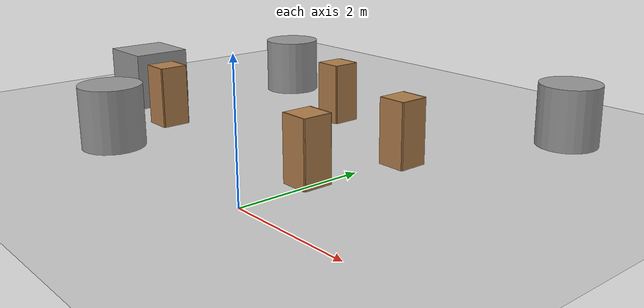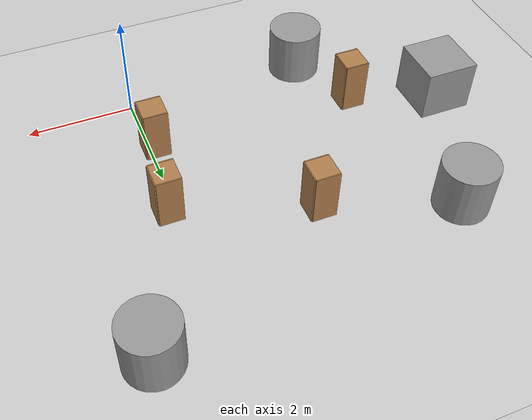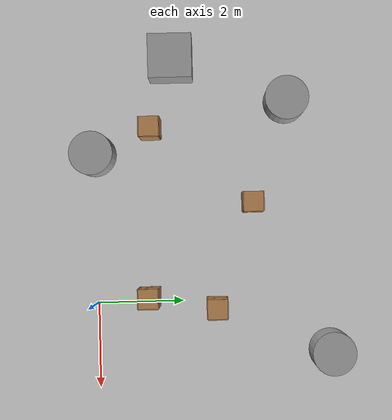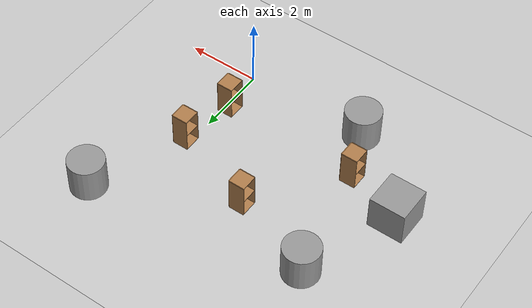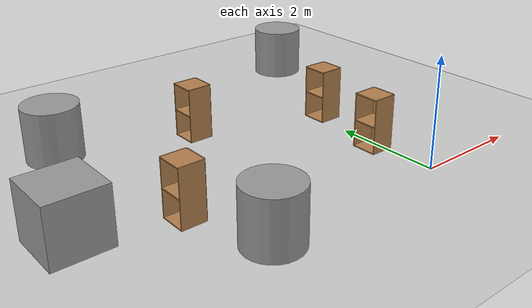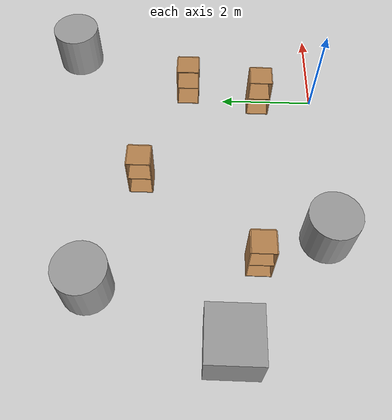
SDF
<sdf version="1.7">
 <world name="default">
  <light name="sun" type="directional">
   <pose>0 0 10 0 -0 0</pose>
   <diffuse>0.8 0.8 0.8 1</diffuse>
   <specular>0.2 0.2 0.2 1</specular>
   <attenuation>
    <range>1000</range>
    <constant>0.9</constant>
    <linear>0.01</linear>
    <quadratic>0.001</quadratic>
   </attenuation>
   <direction>-0.5 0.1 -0.9</direction>
   <spot><inner_angle>0</inner_angle><outer_angle>0</outer_angle><falloff>0</falloff></spot>
  </light>
  <model name="ground_plane">
   <static>1</static>
   <link name="link">
    <collision name="collision">
     <geometry><plane><normal>0 0 1</normal><size>100 100</size></plane></geometry>
     <surface><friction><ode><mu>100</mu><mu2>50</mu2></ode></friction></surface>
    </collision>
    <visual name="visual">
     <cast_shadows>0</cast_shadows>
     <geometry><plane><normal>0 0 1</normal><size>100 100</size></plane></geometry>
     <material>
      <script><uri>file://media/materials/scripts/gazebo.material</uri><name>Gazebo/Grey</name></script>
     </material>
    </visual>
   </link>
  </model>
  <gravity>0 0 -9.8</gravity>
  <magnetic_field>6e-06 2.3e-05 -4.2e-05</magnetic_field>
  <atmosphere type="adiabatic"/>
  <physics type="ode">
   <max_step_size>0.001</max_step_size>
   <real_time_factor>1</real_time_factor>
   <real_time_update_rate>1000</real_time_update_rate>
  </physics>
  <scene><ambient>0.4 0.4 0.4 1</ambient><background>0.7 0.7 0.7 1</background><shadows>1</shadows></scene>
  <audio><device>default</device></audio>
  <spherical_coordinates>
   <surface_model>EARTH_WGS84</surface_model>
   <latitude_deg>0</latitude_deg>
   <longitude_deg>0</longitude_deg>
   <elevation>0</elevation>
   <heading_deg>0</heading_deg>
  </spherical_coordinates>
  <model name="cabinet">
   <static>1</static>
   <link name="cabinet_bottom_plate">
    <inertial>
     <pose>0 0 -1 0 -0 0</pose>
     <inertia><ixx>2.05</ixx><ixy>0</ixy><ixz>0</ixz><iyy>2.05</iyy><iyz>0</iyz><izz>2.05</izz></inertia>
     <mass>25</mass>
    </inertial>
    <collision name="cabinet_bottom_plate_geom">
     <pose>0 0 0.01 0 -0 0</pose>
     <geometry><box><size>0.45 0.45 0.02</size></box></geometry>
    </collision>
    <visual name="cabinet_bottom_plate_geom_visual">
     <pose>0 0 0.01 0 -0 0</pose>
     <geometry><box><size>0.45 0.45 0.02</size></box></geometry>
     <material>
      <script><uri>file://media/materials/scripts/gazebo.material</uri><name>Gazebo/Wood</name></script>
     </material>
    </visual>
    <collision name="cabinet_bottom_plate_geom_cabinet_back_plate">
     <pose>0.235 0 0.51 0 -0 0</pose>
     <geometry><box><size>0.02 0.45 1.02</size></box></geometry>
    </collision>
    <visual name="cabinet_bottom_plate_geom_cabinet_back_plate_visual">
     <pose>0.235 0 0.51 0 -0 0</pose>
     <geometry><box><size>0.02 0.45 1.02</size></box></geometry>
     <material>
      <script><uri>file://media/materials/scripts/gazebo.material</uri><name>Gazebo/Wood</name></script>
     </material>
    </visual>
    <collision name="cabinet_bottom_plate_geom_cabinet_left_plate">
     <pose>0 0.235 0.51 0 -0 0</pose>
     <geometry><box><size>0.45 0.02 1.02</size></box></geometry>
    </collision>
    <visual name="cabinet_bottom_plate_geom_cabinet_left_plate_visual">
     <pose>0 0.235 0.51 0 -0 0</pose>
     <geometry><box><size>0.45 0.02 1.02</size></box></geometry>
     <material>
      <script><uri>file://media/materials/scripts/gazebo.material</uri><name>Gazebo/Wood</name></script>
     </material>
    </visual>
    <collision name="cabinet_bottom_plate_geom_cabinet_middle_plate">
     <pose>0 0 0.51 0 -0 0</pose>
     <geometry><box><size>0.45 0.45 0.02</size></box></geometry>
    </collision>
    <visual name="cabinet_bottom_plate_geom_cabinet_middle_plate_visual">
     <pose>0 0 0.51 0 -0 0</pose>
     <geometry><box><size>0.45 0.45 0.02</size></box></geometry>
     <material>
      <script><uri>file://media/materials/scripts/gazebo.material</uri><name>Gazebo/Wood</name></script>
     </material>
    </visual>
    <collision name="cabinet_bottom_plate_geom_cabinet_right_plate">
     <pose>0 -0.235 0.51 0 -0 0</pose>
     <geometry><box><size>0.45 0.02 1.02</size></box></geometry>
    </collision>
    <visual name="cabinet_bottom_plate_geom_cabinet_right_plate_visual">
     <pose>0 -0.235 0.51 0 -0 0</pose>
     <geometry><box><size>0.45 0.02 1.02</size></box></geometry>
     <material>
      <script><uri>file://media/materials/scripts/gazebo.material</uri><name>Gazebo/Wood</name></script>
     </material>
    </visual>
    <collision name="cabinet_bottom_plate_geom_cabinet_top_plate">
     <pose>0 0 1.01 0 -0 0</pose>
     <geometry><box><size>0.45 0.45 0.02</size></box></geometry>
    </collision>
    <visual name="cabinet_bottom_plate_geom_cabinet_top_plate_visual">
     <pose>0 0 1.01 0 -0 0</pose>
     <geometry><box><size>0.45 0.45 0.02</size></box></geometry>
     <material>
      <script><uri>file://media/materials/scripts/gazebo.material</uri><name>Gazebo/Wood</name></script>
     </material>
    </visual>
   </link>
   <pose>0.147314 2.79299 0 0 -0 0</pose>
  </model>
  <model name="cabinet_0">
   <static>1</static>
   <link name="cabinet_bottom_plate">
    <inertial>
     <pose>0 0 -1 0 -0 0</pose>
     <inertia><ixx>2.05</ixx><ixy>0</ixy><ixz>0</ixz><iyy>2.05</iyy><iyz>0</iyz><izz>2.05</izz></inertia>
     <mass>25</mass>
    </inertial>
    <collision name="cabinet_bottom_plate_geom">
     <pose>0 0 0.01 0 -0 0</pose>
     <geometry><box><size>0.45 0.45 0.02</size></box></geometry>
    </collision>
    <visual name="cabinet_bottom_plate_geom_visual">
     <pose>0 0 0.01 0 -0 0</pose>
     <geometry><box><size>0.45 0.45 0.02</size></box></geometry>
     <material>
      <script><uri>file://media/materials/scripts/gazebo.material</uri><name>Gazebo/Wood</name></script>
     </material>
    </visual>
    <collision name="cabinet_bottom_plate_geom_cabinet_back_plate">
     <pose>0.235 0 0.51 0 -0 0</pose>
     <geometry><box><size>0.02 0.45 1.02</size></box></geometry>
    </collision>
    <visual name="cabinet_bottom_plate_geom_cabinet_back_plate_visual">
     <pose>0.235 0 0.51 0 -0 0</pose>
     <geometry><box><size>0.02 0.45 1.02</size></box></geometry>
     <material>
      <script><uri>file://media/materials/scripts/gazebo.material</uri><name>Gazebo/Wood</name></script>
     </material>
    </visual>
    <collision name="cabinet_bottom_plate_geom_cabinet_left_plate">
     <pose>0 0.235 0.51 0 -0 0</pose>
     <geometry><box><size>0.45 0.02 1.02</size></box></geometry>
    </collision>
    <visual name="cabinet_bottom_plate_geom_cabinet_left_plate_visual">
     <pose>0 0.235 0.51 0 -0 0</pose>
     <geometry><box><size>0.45 0.02 1.02</size></box></geometry>
     <material>
      <script><uri>file://media/materials/scripts/gazebo.material</uri><name>Gazebo/Wood</name></script>
     </material>
    </visual>
    <collision name="cabinet_bottom_plate_geom_cabinet_middle_plate">
     <pose>0 0 0.51 0 -0 0</pose>
     <geometry><box><size>0.45 0.45 0.02</size></box></geometry>
    </collision>
    <visual name="cabinet_bottom_plate_geom_cabinet_middle_plate_visual">
     <pose>0 0 0.51 0 -0 0</pose>
     <geometry><box><size>0.45 0.45 0.02</size></box></geometry>
     <material>
      <script><uri>file://media/materials/scripts/gazebo.material</uri><name>Gazebo/Wood</name></script>
     </material>
    </visual>
    <collision name="cabinet_bottom_plate_geom_cabinet_right_plate">
     <pose>0 -0.235 0.51 0 -0 0</pose>
     <geometry><box><size>0.45 0.02 1.02</size></box></geometry>
    </collision>
    <visual name="cabinet_bottom_plate_geom_cabinet_right_plate_visual">
     <pose>0 -0.235 0.51 0 -0 0</pose>
     <geometry><box><size>0.45 0.02 1.02</size></box></geometry>
     <material>
      <script><uri>file://media/materials/scripts/gazebo.material</uri><name>Gazebo/Wood</name></script>
     </material>
    </visual>
    <collision name="cabinet_bottom_plate_geom_cabinet_top_plate">
     <pose>0 0 1.01 0 -0 0</pose>
     <geometry><box><size>0.45 0.45 0.02</size></box></geometry>
    </collision>
    <visual name="cabinet_bottom_plate_geom_cabinet_top_plate_visual">
     <pose>0 0 1.01 0 -0 0</pose>
     <geometry><box><size>0.45 0.45 0.02</size></box></geometry>
     <material>
      <script><uri>file://media/materials/scripts/gazebo.material</uri><name>Gazebo/Wood</name></script>
     </material>
    </visual>
   </link>
   <pose>-0.119838 1.22126 0 0 -0 0</pose>
  </model>
  <model name="cabinet_1">
   <static>1</static>
   <link name="cabinet_bottom_plate">
    <inertial>
     <pose>0 0 -1 0 -0 0</pose>
     <inertia><ixx>2.05</ixx><ixy>0</ixy><ixz>0</ixz><iyy>2.05</iyy><iyz>0</iyz><izz>2.05</izz></inertia>
     <mass>25</mass>
    </inertial>
    <collision name="cabinet_bottom_plate_geom">
     <pose>0 0 0.01 0 -0 0</pose>
     <geometry><box><size>0.45 0.45 0.02</size></box></geometry>
    </collision>
    <visual name="cabinet_bottom_plate_geom_visual">
     <pose>0 0 0.01 0 -0 0</pose>
     <geometry><box><size>0.45 0.45 0.02</size></box></geometry>
     <material>
      <script><uri>file://media/materials/scripts/gazebo.material</uri><name>Gazebo/Wood</name></script>
     </material>
    </visual>
    <collision name="cabinet_bottom_plate_geom_cabinet_back_plate">
     <pose>0.235 0 0.51 0 -0 0</pose>
     <geometry><box><size>0.02 0.45 1.02</size></box></geometry>
    </collision>
    <visual name="cabinet_bottom_plate_geom_cabinet_back_plate_visual">
     <pose>0.235 0 0.51 0 -0 0</pose>
     <geometry><box><size>0.02 0.45 1.02</size></box></geometry>
     <material>
      <script><uri>file://media/materials/scripts/gazebo.material</uri><name>Gazebo/Wood</name></script>
     </material>
    </visual>
    <collision name="cabinet_bottom_plate_geom_cabinet_left_plate">
     <pose>0 0.235 0.51 0 -0 0</pose>
     <geometry><box><size>0.45 0.02 1.02</size></box></geometry>
    </collision>
    <visual name="cabinet_bottom_plate_geom_cabinet_left_plate_visual">
     <pose>0 0.235 0.51 0 -0 0</pose>
     <geometry><box><size>0.45 0.02 1.02</size></box></geometry>
     <material>
      <script><uri>file://media/materials/scripts/gazebo.material</uri><name>Gazebo/Wood</name></script>
     </material>
    </visual>
    <collision name="cabinet_bottom_plate_geom_cabinet_middle_plate">
     <pose>0 0 0.51 0 -0 0</pose>
     <geometry><box><size>0.45 0.45 0.02</size></box></geometry>
    </collision>
    <visual name="cabinet_bottom_plate_geom_cabinet_middle_plate_visual">
     <pose>0 0 0.51 0 -0 0</pose>
     <geometry><box><size>0.45 0.45 0.02</size></box></geometry>
     <material>
      <script><uri>file://media/materials/scripts/gazebo.material</uri><name>Gazebo/Wood</name></script>
     </material>
    </visual>
    <collision name="cabinet_bottom_plate_geom_cabinet_right_plate">
     <pose>0 -0.235 0.51 0 -0 0</pose>
     <geometry><box><size>0.45 0.02 1.02</size></box></geometry>
    </collision>
    <visual name="cabinet_bottom_plate_geom_cabinet_right_plate_visual">
     <pose>0 -0.235 0.51 0 -0 0</pose>
     <geometry><box><size>0.45 0.02 1.02</size></box></geometry>
     <material>
      <script><uri>file://media/materials/scripts/gazebo.material</uri><name>Gazebo/Wood</name></script>
     </material>
    </visual>
    <collision name="cabinet_bottom_plate_geom_cabinet_top_plate">
     <pose>0 0 1.01 0 -0 0</pose>
     <geometry><box><size>0.45 0.45 0.02</size></box></geometry>
    </collision>
    <visual name="cabinet_bottom_plate_geom_cabinet_top_plate_visual">
     <pose>0 0 1.01 0 -0 0</pose>
     <geometry><box><size>0.45 0.45 0.02</size></box></geometry>
     <material>
      <script><uri>file://media/materials/scripts/gazebo.material</uri><name>Gazebo/Wood</name></script>
     </material>
    </visual>
   </link>
   <pose>-2.28632 3.66102 0 0 -0 0</pose>
  </model>
  <model name="unit_cylinder">
   <pose>-4.62071 4.4719 0.499998 3e-06 -4e-06 0</pose>
   <link name="link">
    <inertial>
     <mass>1</mass>
     <inertia><ixx>0.145833</ixx><ixy>0</ixy><ixz>0</ixz><iyy>0.145833</iyy><iyz>0</iyz><izz>0.125</izz></inertia>
    </inertial>
    <collision name="collision">
     <geometry><cylinder><radius>0.5</radius><length>1</length></cylinder></geometry>
    </collision>
    <visual name="visual">
     <geometry><cylinder><radius>0.5</radius><length>1</length></cylinder></geometry>
     <material>
      <script><name>Gazebo/Grey</name><uri>file://media/materials/scripts/gazebo.material</uri></script>
     </material>
    </visual>
   </link>
  </model>
  <model name="unit_cylinder_0">
   <pose>1.22243 5.42707 0.499992 -3e-06 4e-06 0</pose>
   <link name="link">
    <inertial>
     <mass>1</mass>
     <inertia><ixx>0.145833</ixx><ixy>0</ixy><ixz>0</ixz><iyy>0.145833</iyy><iyz>0</iyz><izz>0.125</izz></inertia>
    </inertial>
    <collision name="collision">
     <geometry><cylinder><radius>0.5</radius><length>1</length></cylinder></geometry>
    </collision>
    <visual name="visual">
     <geometry><cylinder><radius>0.5</radius><length>1</length></cylinder></geometry>
     <material>
      <script><name>Gazebo/Grey</name><uri>file://media/materials/scripts/gazebo.material</uri></script>
     </material>
    </visual>
   </link>
  </model>
  <model name="unit_cylinder_1">
   <pose>-3.46192 -0.009353 0.499998 3e-06 -4e-06 0</pose>
   <link name="link">
    <inertial>
     <mass>1</mass>
     <inertia><ixx>0.145833</ixx><ixy>0</ixy><ixz>0</ixz><iyy>0.145833</iyy><iyz>0</iyz><izz>0.125</izz></inertia>
    </inertial>
    <collision name="collision">
     <geometry><cylinder><radius>0.5</radius><length>1</length></cylinder></geometry>
    </collision>
    <visual name="visual">
     <geometry><cylinder><radius>0.5</radius><length>1</length></cylinder></geometry>
     <material>
      <script><name>Gazebo/Grey</name><uri>file://media/materials/scripts/gazebo.material</uri></script>
     </material>
    </visual>
   </link>
  </model>
  <model name="unit_box">
   <pose>-5.63394 1.83022 0.499995 0 1e-05 0</pose>
   <link name="link">
    <inertial>
     <mass>1</mass>
     <inertia>
      <ixx>0.166667</ixx>
      <ixy>0</ixy>
      <ixz>0</ixz>
      <iyy>0.166667</iyy>
      <iyz>0</iyz>
      <izz>0.166667</izz>
     </inertia>
    </inertial>
    <collision name="collision"><geometry><box><size>1 1 1</size></box></geometry></collision>
    <visual name="visual">
     <geometry><box><size>1 1 1</size></box></geometry>
     <material>
      <script><name>Gazebo/Grey</name><uri>file://media/materials/scripts/gazebo.material</uri></script>
     </material>
    </visual>
   </link>
  </model>
  <model name="cabinet_2">
   <static>1</static>
   <link name="cabinet_bottom_plate">
    <inertial>
     <pose>0 0 -1 0 -0 0</pose>
     <inertia><ixx>2.05</ixx><ixy>0</ixy><ixz>0</ixz><iyy>2.05</iyy><iyz>0</iyz><izz>2.05</izz></inertia>
     <mass>25</mass>
    </inertial>
    <collision name="cabinet_bottom_plate_geom">
     <pose>0 0 0.01 0 -0 0</pose>
     <geometry><box><size>0.45 0.45 0.02</size></box></geometry>
    </collision>
    <visual name="cabinet_bottom_plate_geom_visual">
     <pose>0 0 0.01 0 -0 0</pose>
     <geometry><box><size>0.45 0.45 0.02</size></box></geometry>
     <material>
      <script><uri>file://media/materials/scripts/gazebo.material</uri><name>Gazebo/Wood</name></script>
     </material>
    </visual>
    <collision name="cabinet_bottom_plate_geom_cabinet_back_plate">
     <pose>0.235 0 0.51 0 -0 0</pose>
     <geometry><box><size>0.02 0.45 1.02</size></box></geometry>
    </collision>
    <visual name="cabinet_bottom_plate_geom_cabinet_back_plate_visual">
     <pose>0.235 0 0.51 0 -0 0</pose>
     <geometry><box><size>0.02 0.45 1.02</size></box></geometry>
     <material>
      <script><uri>file://media/materials/scripts/gazebo.material</uri><name>Gazebo/Wood</name></script>
     </material>
    </visual>
    <collision name="cabinet_bottom_plate_geom_cabinet_left_plate">
     <pose>0 0.235 0.51 0 -0 0</pose>
     <geometry><box><size>0.45 0.02 1.02</size></box></geometry>
    </collision>
    <visual name="cabinet_bottom_plate_geom_cabinet_left_plate_visual">
     <pose>0 0.235 0.51 0 -0 0</pose>
     <geometry><box><size>0.45 0.02 1.02</size></box></geometry>
     <material>
      <script><uri>file://media/materials/scripts/gazebo.material</uri><name>Gazebo/Wood</name></script>
     </material>
    </visual>
    <collision name="cabinet_bottom_plate_geom_cabinet_middle_plate">
     <pose>0 0 0.51 0 -0 0</pose>
     <geometry><box><size>0.45 0.45 0.02</size></box></geometry>
    </collision>
    <visual name="cabinet_bottom_plate_geom_cabinet_middle_plate_visual">
     <pose>0 0 0.51 0 -0 0</pose>
     <geometry><box><size>0.45 0.45 0.02</size></box></geometry>
     <material>
      <script><uri>file://media/materials/scripts/gazebo.material</uri><name>Gazebo/Wood</name></script>
     </material>
    </visual>
    <collision name="cabinet_bottom_plate_geom_cabinet_right_plate">
     <pose>0 -0.235 0.51 0 -0 0</pose>
     <geometry><box><size>0.45 0.02 1.02</size></box></geometry>
    </collision>
    <visual name="cabinet_bottom_plate_geom_cabinet_right_plate_visual">
     <pose>0 -0.235 0.51 0 -0 0</pose>
     <geometry><box><size>0.45 0.02 1.02</size></box></geometry>
     <material>
      <script><uri>file://media/materials/scripts/gazebo.material</uri><name>Gazebo/Wood</name></script>
     </material>
    </visual>
    <collision name="cabinet_bottom_plate_geom_cabinet_top_plate">
     <pose>0 0 1.01 0 -0 0</pose>
     <geometry><box><size>0.45 0.45 0.02</size></box></geometry>
    </collision>
    <visual name="cabinet_bottom_plate_geom_cabinet_top_plate_visual">
     <pose>0 0 1.01 0 -0 0</pose>
     <geometry><box><size>0.45 0.45 0.02</size></box></geometry>
     <material>
      <script><uri>file://media/materials/scripts/gazebo.material</uri><name>Gazebo/Wood</name></script>
     </material>
    </visual>
   </link>
   <pose>-4.04015 1.31501 0 0 -0 0</pose>
  </model>
 </world>
</sdf>
